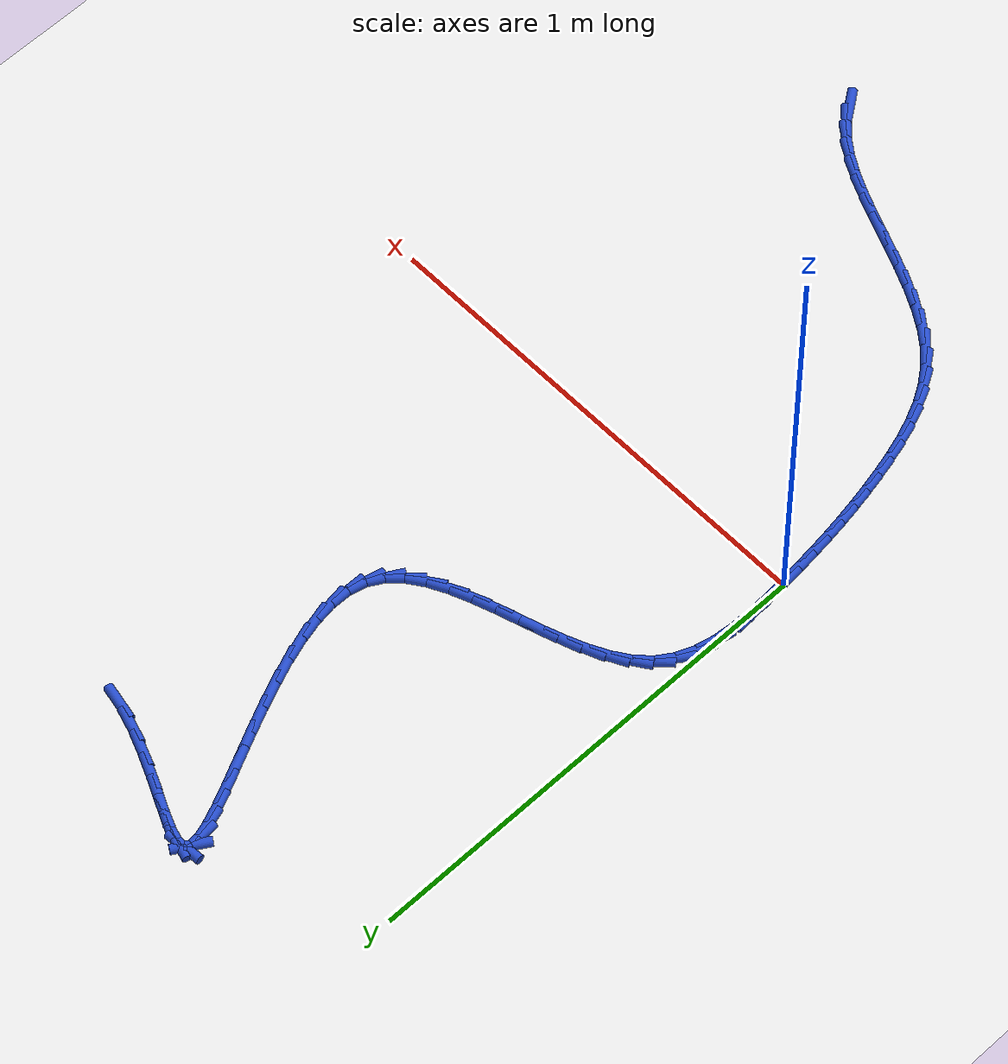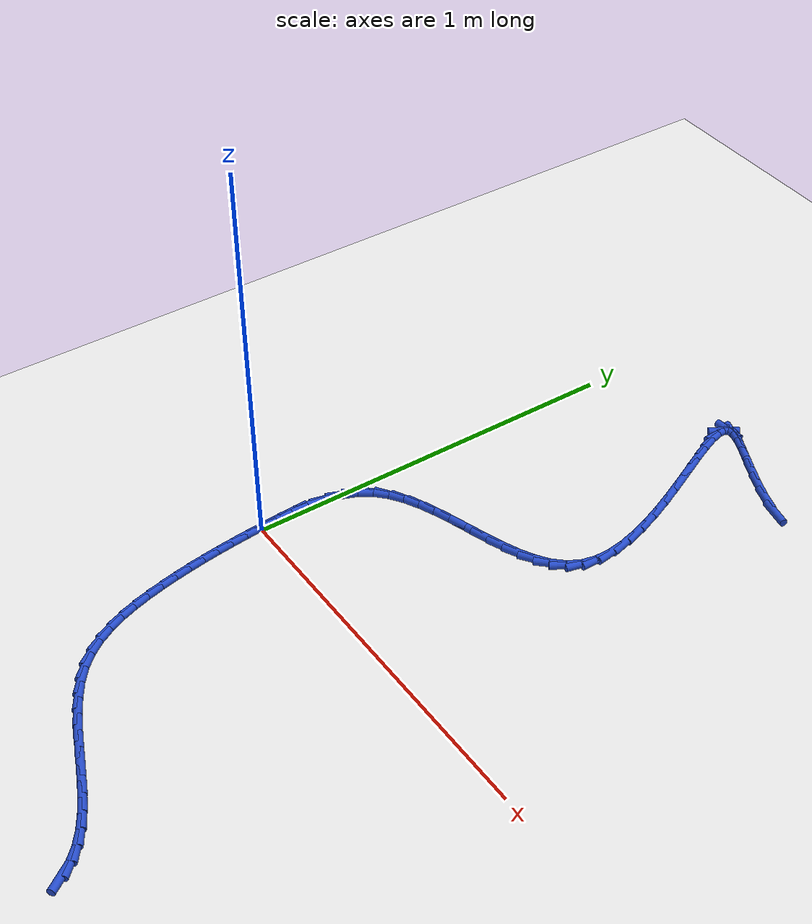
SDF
<sdf version="1.6">
 <world name="default">
  <model name="ground_plane">
   <static>1</static>
   <link name="link">
    <collision name="collision">
     <geometry><plane><normal>0 0 1</normal><size>100 100</size></plane></geometry>
     <surface><friction><ode><mu>100</mu><mu2>50</mu2></ode></friction></surface>
    </collision>
    <visual name="visual">
     <cast_shadows>0</cast_shadows>
     <geometry><plane><normal>0 0 1</normal><size>100 100</size></plane></geometry>
     <material>
      <script><uri>file://media/materials/scripts/gazebo.material</uri><name>Gazebo/WhiteGlow</name></script>
     </material>
    </visual>
   </link>
  </model>
  <model name="line">
   <link name="link_0">
    <pose>2.6454533008646308e-17 -2.7755575615628914e-17 0.01 0 1.57 -1.5002465072789468</pose>
    <collision name="collision">
     <geometry><cylinder><radius>0.01</radius><length>0.08</length></cylinder></geometry>
    </collision>
    <visual name="visual">
     <material>
      <script><name>Gazebo/Blue</name><uri>file://media/materials/scripts/gazebo.material</uri></script>
     </material>
     <geometry><cylinder><radius>0.01</radius><length>0.08</length></cylinder></geometry>
    </visual>
   </link>
   <link name="link_1">
    <pose>-0.0031910155406945067 0.04515560231839195 0.01 0 1.57 -1.534526395487367</pose>
    <collision name="collision">
     <geometry><cylinder><radius>0.01</radius><length>0.08</length></cylinder></geometry>
    </collision>
    <visual name="visual">
     <material>
      <script><name>Gazebo/Blue</name><uri>file://media/materials/scripts/gazebo.material</uri></script>
     </material>
     <geometry><cylinder><radius>0.01</radius><length>0.08</length></cylinder></geometry>
    </visual>
   </link>
   <link name="link_2">
    <pose>-0.0048461995546252605 0.09077074654580536 0.01 0 1.57 1.5497232177446134</pose>
    <collision name="collision">
     <geometry><cylinder><radius>0.01</radius><length>0.08</length></cylinder></geometry>
    </collision>
    <visual name="visual">
     <material>
      <script><name>Gazebo/Blue</name><uri>file://media/materials/scripts/gazebo.material</uri></script>
     </material>
     <geometry><cylinder><radius>0.01</radius><length>0.08</length></cylinder></geometry>
    </visual>
   </link>
   <link name="link_3">
    <pose>-0.0038965086762597296 0.13583055683068881 0.01 0 1.57 1.4648789085244343</pose>
    <collision name="collision">
     <geometry><cylinder><radius>0.01</radius><length>0.08</length></cylinder></geometry>
    </collision>
    <visual name="visual">
     <material>
      <script><name>Gazebo/Blue</name><uri>file://media/materials/scripts/gazebo.material</uri></script>
     </material>
     <geometry><cylinder><radius>0.01</radius><length>0.08</length></cylinder></geometry>
    </visual>
   </link>
   <link name="link_4">
    <pose>0.0007271004599345848 0.17932015732149093 0.01 0 1.57 1.3456909850739898</pose>
    <collision name="collision">
     <geometry><cylinder><radius>0.01</radius><length>0.08</length></cylinder></geometry>
    </collision>
    <visual name="visual">
     <material>
      <script><name>Gazebo/Blue</name><uri>file://media/materials/scripts/gazebo.material</uri></script>
     </material>
     <geometry><cylinder><radius>0.01</radius><length>0.08</length></cylinder></geometry>
    </visual>
   </link>
   <link name="link_5">
    <pose>0.010093671219490197 0.2202246721666603 0.01 0 1.57 1.1843707430381305</pose>
    <collision name="collision">
     <geometry><cylinder><radius>0.01</radius><length>0.08</length></cylinder></geometry>
    </collision>
    <visual name="visual">
     <material>
      <script><name>Gazebo/Blue</name><uri>file://media/materials/scripts/gazebo.material</uri></script>
     </material>
     <geometry><cylinder><radius>0.01</radius><length>0.08</length></cylinder></geometry>
    </visual>
   </link>
   <link name="link_6">
    <pose>0.02527224696793958 0.2575292255146455 0.01 0 1.57 0.9774338475238803</pose>
    <collision name="collision">
     <geometry><cylinder><radius>0.01</radius><length>0.08</length></cylinder></geometry>
    </collision>
    <visual name="visual">
     <material>
      <script><name>Gazebo/Blue</name><uri>file://media/materials/scripts/gazebo.material</uri></script>
     </material>
     <geometry><cylinder><radius>0.01</radius><length>0.08</length></cylinder></geometry>
    </visual>
   </link>
   <link name="link_7">
    <pose>0.04732373669634079 0.2902253921291082 0.01 0 1.57 0.7587529641719621</pose>
    <collision name="collision">
     <geometry><cylinder><radius>0.01</radius><length>0.08</length></cylinder></geometry>
    </collision>
    <visual name="visual">
     <material>
      <script><name>Gazebo/Blue</name><uri>file://media/materials/scripts/gazebo.material</uri></script>
     </material>
     <geometry><cylinder><radius>0.01</radius><length>0.08</length></cylinder></geometry>
    </visual>
   </link>
   <link name="link_8">
    <pose>0.07653416477913576 0.31791923563353836 0.01 0 1.57 0.5862257848789586</pose>
    <collision name="collision">
     <geometry><cylinder><radius>0.01</radius><length>0.08</length></cylinder></geometry>
    </collision>
    <visual name="visual">
     <material>
      <script><name>Gazebo/Blue</name><uri>file://media/materials/scripts/gazebo.material</uri></script>
     </material>
     <geometry><cylinder><radius>0.01</radius><length>0.08</length></cylinder></geometry>
    </visual>
   </link>
   <link name="link_9">
    <pose>0.11178583341825085 0.34132998104192025 0.01 0 1.57 0.46266032682506864</pose>
    <collision name="collision">
     <geometry><cylinder><radius>0.01</radius><length>0.08</length></cylinder></geometry>
    </collision>
    <visual name="visual">
     <material>
      <script><name>Gazebo/Blue</name><uri>file://media/materials/scripts/gazebo.material</uri></script>
     </material>
     <geometry><cylinder><radius>0.01</radius><length>0.08</length></cylinder></geometry>
    </visual>
   </link>
   <link name="link_10">
    <pose>0.1518130486746015 0.36129421533155354 0.01 0 1.57 0.3793075172697864</pose>
    <collision name="collision">
     <geometry><cylinder><radius>0.01</radius><length>0.08</length></cylinder></geometry>
    </collision>
    <visual name="visual">
     <material>
      <script><name>Gazebo/Blue</name><uri>file://media/materials/scripts/gazebo.material</uri></script>
     </material>
     <geometry><cylinder><radius>0.01</radius><length>0.08</length></cylinder></geometry>
    </visual>
   </link>
   <link name="link_11">
    <pose>0.19535011660910287 0.3786485254797379 0.01 0 1.57 0.32803913888897657</pose>
    <collision name="collision">
     <geometry><cylinder><radius>0.01</radius><length>0.08</length></cylinder></geometry>
    </collision>
    <visual name="visual">
     <material>
      <script><name>Gazebo/Blue</name><uri>file://media/materials/scripts/gazebo.material</uri></script>
     </material>
     <geometry><cylinder><radius>0.01</radius><length>0.08</length></cylinder></geometry>
    </visual>
   </link>
   <link name="link_12">
    <pose>0.24113134328267055 0.3942294984637727 0.01 0 1.57 0.3035046907364256</pose>
    <collision name="collision">
     <geometry><cylinder><radius>0.01</radius><length>0.08</length></cylinder></geometry>
    </collision>
    <visual name="visual">
     <material>
      <script><name>Gazebo/Blue</name><uri>file://media/materials/scripts/gazebo.material</uri></script>
     </material>
     <geometry><cylinder><radius>0.01</radius><length>0.08</length></cylinder></geometry>
    </visual>
   </link>
   <link name="link_13">
    <pose>0.2878910347562199 0.40887372126095783 0.01 0 1.57 0.30330462855249307</pose>
    <collision name="collision">
     <geometry><cylinder><radius>0.01</radius><length>0.08</length></cylinder></geometry>
    </collision>
    <visual name="visual">
     <material>
      <script><name>Gazebo/Blue</name><uri>file://media/materials/scripts/gazebo.material</uri></script>
     </material>
     <geometry><cylinder><radius>0.01</radius><length>0.08</length></cylinder></geometry>
    </visual>
   </link>
   <link name="link_14">
    <pose>0.3343634970906661 0.42341778084859266 0.01 0 1.57 0.3278949474325294</pose>
    <collision name="collision">
     <geometry><cylinder><radius>0.01</radius><length>0.08</length></cylinder></geometry>
    </collision>
    <visual name="visual">
     <material>
      <script><name>Gazebo/Blue</name><uri>file://media/materials/scripts/gazebo.material</uri></script>
     </material>
     <geometry><cylinder><radius>0.01</radius><length>0.08</length></cylinder></geometry>
    </visual>
   </link>
   <link name="link_15">
    <pose>0.37928303634692473 0.4386982642039769 0.01 0 1.57 0.38077510317933083</pose>
    <collision name="collision">
     <geometry><cylinder><radius>0.01</radius><length>0.08</length></cylinder></geometry>
    </collision>
    <visual name="visual">
     <material>
      <script><name>Gazebo/Blue</name><uri>file://media/materials/scripts/gazebo.material</uri></script>
     </material>
     <geometry><cylinder><radius>0.01</radius><length>0.08</length></cylinder></geometry>
    </visual>
   </link>
   <link name="link_16">
    <pose>0.42138395858591116 0.45555175830441 0.01 0 1.57 0.46899479907376335</pose>
    <collision name="collision">
     <geometry><cylinder><radius>0.01</radius><length>0.08</length></cylinder></geometry>
    </collision>
    <visual name="visual">
     <material>
      <script><name>Gazebo/Blue</name><uri>file://media/materials/scripts/gazebo.material</uri></script>
     </material>
     <geometry><cylinder><radius>0.01</radius><length>0.08</length></cylinder></geometry>
    </visual>
   </link>
   <link name="link_17">
    <pose>0.45940056986854055 0.4748148501271916 0.01 0 1.57 0.6033463983947079</pose>
    <collision name="collision">
     <geometry><cylinder><radius>0.01</radius><length>0.08</length></cylinder></geometry>
    </collision>
    <visual name="visual">
     <material>
      <script><name>Gazebo/Blue</name><uri>file://media/materials/scripts/gazebo.material</uri></script>
     </material>
     <geometry><cylinder><radius>0.01</radius><length>0.08</length></cylinder></geometry>
    </visual>
   </link>
   <link name="link_18">
    <pose>0.4920671762557285 0.49732412664962145 0.01 0 1.57 0.7956772516427784</pose>
    <collision name="collision">
     <geometry><cylinder><radius>0.01</radius><length>0.08</length></cylinder></geometry>
    </collision>
    <visual name="visual">
     <material>
      <script><name>Gazebo/Blue</name><uri>file://media/materials/scripts/gazebo.material</uri></script>
     </material>
     <geometry><cylinder><radius>0.01</radius><length>0.08</length></cylinder></geometry>
    </visual>
   </link>
   <link name="link_19">
    <pose>0.5181180838083903 0.5239161748489991 0.01 0 1.57 1.0477595407057718</pose>
    <collision name="collision">
     <geometry><cylinder><radius>0.01</radius><length>0.08</length></cylinder></geometry>
    </collision>
    <visual name="visual">
     <material>
      <script><name>Gazebo/Blue</name><uri>file://media/materials/scripts/gazebo.material</uri></script>
     </material>
     <geometry><cylinder><radius>0.01</radius><length>0.08</length></cylinder></geometry>
    </visual>
   </link>
   <link name="link_20">
    <pose>0.5362875985874412 0.5554275817026241 0.01 0 1.57 1.3289871894173249</pose>
    <collision name="collision">
     <geometry><cylinder><radius>0.01</radius><length>0.08</length></cylinder></geometry>
    </collision>
    <visual name="visual">
     <material>
      <script><name>Gazebo/Blue</name><uri>file://media/materials/scripts/gazebo.material</uri></script>
     </material>
     <geometry><cylinder><radius>0.01</radius><length>0.08</length></cylinder></geometry>
    </visual>
   </link>
   <link name="link_21">
    <pose>0.5454525833274843 0.592587690681832 0.01 0 1.57 1.557955426080886</pose>
    <collision name="collision">
     <geometry><cylinder><radius>0.01</radius><length>0.08</length></cylinder></geometry>
    </collision>
    <visual name="visual">
     <material>
      <script><name>Gazebo/Blue</name><uri>file://media/materials/scripts/gazebo.material</uri></script>
     </material>
     <geometry><cylinder><radius>0.01</radius><length>0.08</length></cylinder></geometry>
    </visual>
   </link>
   <link name="link_22">
    <pose>0.5459971225542201 0.6349919821776754 0.01 0 1.57 -1.426071719680518</pose>
    <collision name="collision">
     <geometry><cylinder><radius>0.01</radius><length>0.08</length></cylinder></geometry>
    </collision>
    <visual name="visual">
     <material>
      <script><name>Gazebo/Blue</name><uri>file://media/materials/scripts/gazebo.material</uri></script>
     </material>
     <geometry><cylinder><radius>0.01</radius><length>0.08</length></cylinder></geometry>
    </visual>
   </link>
   <link name="link_23">
    <pose>0.5392109118573635 0.6815546573184943 0.01 0 1.57 -1.3180870062495131</pose>
    <collision name="collision">
     <geometry><cylinder><radius>0.01</radius><length>0.08</length></cylinder></geometry>
    </collision>
    <visual name="visual">
     <material>
      <script><name>Gazebo/Blue</name><uri>file://media/materials/scripts/gazebo.material</uri></script>
     </material>
     <geometry><cylinder><radius>0.01</radius><length>0.08</length></cylinder></geometry>
    </visual>
   </link>
   <link name="link_24">
    <pose>0.5263960046674354 0.7311806205919325 0.01 0 1.57 -1.2430658597152402</pose>
    <collision name="collision">
     <geometry><cylinder><radius>0.01</radius><length>0.08</length></cylinder></geometry>
    </collision>
    <visual name="visual">
     <material>
      <script><name>Gazebo/Blue</name><uri>file://media/materials/scripts/gazebo.material</uri></script>
     </material>
     <geometry><cylinder><radius>0.01</radius><length>0.08</length></cylinder></geometry>
    </visual>
   </link>
   <link name="link_25">
    <pose>0.5088544544149562 0.7827747764856342 0.01 0 1.57 -1.190631117307065</pose>
    <collision name="collision">
     <geometry><cylinder><radius>0.01</radius><length>0.08</length></cylinder></geometry>
    </collision>
    <visual name="visual">
     <material>
      <script><name>Gazebo/Blue</name><uri>file://media/materials/scripts/gazebo.material</uri></script>
     </material>
     <geometry><cylinder><radius>0.01</radius><length>0.08</length></cylinder></geometry>
    </visual>
   </link>
   <link name="link_26">
    <pose>0.4878883145304467 0.8352420294872428 0.01 0 1.57 -1.1546747554538452</pose>
    <collision name="collision">
     <geometry><cylinder><radius>0.01</radius><length>0.08</length></cylinder></geometry>
    </collision>
    <visual name="visual">
     <material>
      <script><name>Gazebo/Blue</name><uri>file://media/materials/scripts/gazebo.material</uri></script>
     </material>
     <geometry><cylinder><radius>0.01</radius><length>0.08</length></cylinder></geometry>
    </visual>
   </link>
   <link name="link_27">
    <pose>0.46479963844442757 0.8874872840844025 0.01 0 1.57 -1.1318709974345722</pose>
    <collision name="collision">
     <geometry><cylinder><radius>0.01</radius><length>0.08</length></cylinder></geometry>
    </collision>
    <visual name="visual">
     <material>
      <script><name>Gazebo/Blue</name><uri>file://media/materials/scripts/gazebo.material</uri></script>
     </material>
     <geometry><cylinder><radius>0.01</radius><length>0.08</length></cylinder></geometry>
    </visual>
   </link>
   <link name="link_28">
    <pose>0.44089047958741934 0.9384154447647566 0.01 0 1.57 -1.120935004586218</pose>
    <collision name="collision">
     <geometry><cylinder><radius>0.01</radius><length>0.08</length></cylinder></geometry>
    </collision>
    <visual name="visual">
     <material>
      <script><name>Gazebo/Blue</name><uri>file://media/materials/scripts/gazebo.material</uri></script>
     </material>
     <geometry><cylinder><radius>0.01</radius><length>0.08</length></cylinder></geometry>
    </visual>
   </link>
   <link name="link_29">
    <pose>0.41746289138994264 0.9869314160159498 0.01 0 1.57 -1.1225580075919648</pose>
    <collision name="collision">
     <geometry><cylinder><radius>0.01</radius><length>0.08</length></cylinder></geometry>
    </collision>
    <visual name="visual">
     <material>
      <script><name>Gazebo/Blue</name><uri>file://media/materials/scripts/gazebo.material</uri></script>
     </material>
     <geometry><cylinder><radius>0.01</radius><length>0.08</length></cylinder></geometry>
    </visual>
   </link>
   <link name="link_30">
    <pose>0.39581892728251833 1.0319401023256258 0.01 0 1.57 -1.1402422260604606</pose>
    <collision name="collision">
     <geometry><cylinder><radius>0.01</radius><length>0.08</length></cylinder></geometry>
    </collision>
    <visual name="visual">
     <material>
      <script><name>Gazebo/Blue</name><uri>file://media/materials/scripts/gazebo.material</uri></script>
     </material>
     <geometry><cylinder><radius>0.01</radius><length>0.08</length></cylinder></geometry>
    </visual>
   </link>
   <link name="link_31">
    <pose>0.377260640695667 1.0723464081814282 0.01 0 1.57 -1.1831814850915932</pose>
    <collision name="collision">
     <geometry><cylinder><radius>0.01</radius><length>0.08</length></cylinder></geometry>
    </collision>
    <visual name="visual">
     <material>
      <script><name>Gazebo/Blue</name><uri>file://media/materials/scripts/gazebo.material</uri></script>
     </material>
     <geometry><cylinder><radius>0.01</radius><length>0.08</length></cylinder></geometry>
    </visual>
   </link>
   <link name="link_32">
    <pose>0.36309008505990914 1.107055238071001 0.01 0 1.57 -1.2758631172956232</pose>
    <collision name="collision">
     <geometry><cylinder><radius>0.01</radius><length>0.08</length></cylinder></geometry>
    </collision>
    <visual name="visual">
     <material>
      <script><name>Gazebo/Blue</name><uri>file://media/materials/scripts/gazebo.material</uri></script>
     </material>
     <geometry><cylinder><radius>0.01</radius><length>0.08</length></cylinder></geometry>
    </visual>
   </link>
   <link name="link_33">
    <pose>0.35460931380576555 1.1349714964819877 0.01 0 1.57 -1.4965924245219366</pose>
    <collision name="collision">
     <geometry><cylinder><radius>0.01</radius><length>0.08</length></cylinder></geometry>
    </collision>
    <visual name="visual">
     <material>
      <script><name>Gazebo/Blue</name><uri>file://media/materials/scripts/gazebo.material</uri></script>
     </material>
     <geometry><cylinder><radius>0.01</radius><length>0.08</length></cylinder></geometry>
    </visual>
   </link>
   <link name="link_34">
    <pose>0.3531203803637569 1.1550000879020332 0.01 0 1.57 1.0186473919348549</pose>
    <collision name="collision">
     <geometry><cylinder><radius>0.01</radius><length>0.08</length></cylinder></geometry>
    </collision>
    <visual name="visual">
     <material>
      <script><name>Gazebo/Blue</name><uri>file://media/materials/scripts/gazebo.material</uri></script>
     </material>
     <geometry><cylinder><radius>0.01</radius><length>0.08</length></cylinder></geometry>
    </visual>
   </link>
   <link name="link_35">
    <pose>0.3599253381644037 1.16604591681878 0.01 0 1.57 0.0826007295407529</pose>
    <collision name="collision">
     <geometry><cylinder><radius>0.01</radius><length>0.08</length></cylinder></geometry>
    </collision>
    <visual name="visual">
     <material>
      <script><name>Gazebo/Blue</name><uri>file://media/materials/scripts/gazebo.material</uri></script>
     </material>
     <geometry><cylinder><radius>0.01</radius><length>0.08</length></cylinder></geometry>
    </visual>
   </link>
   <link name="link_36">
    <pose>0.3760257774485329 1.1673788577282314 0.01 0 1.57 -0.27894535806048254</pose>
    <collision name="collision">
     <geometry><cylinder><radius>0.01</radius><length>0.08</length></cylinder></geometry>
    </collision>
    <visual name="visual">
     <material>
      <script><name>Gazebo/Blue</name><uri>file://media/materials/scripts/gazebo.material</uri></script>
     </material>
     <geometry><cylinder><radius>0.01</radius><length>0.08</length></cylinder></geometry>
    </visual>
   </link>
   <link name="link_37">
    <pose>0.4007540835262429 1.1602963537551454 0.01 0 1.57 -0.3979805170856451</pose>
    <collision name="collision">
     <geometry><cylinder><radius>0.01</radius><length>0.08</length></cylinder></geometry>
    </collision>
    <visual name="visual">
     <material>
      <script><name>Gazebo/Blue</name><uri>file://media/materials/scripts/gazebo.material</uri></script>
     </material>
     <geometry><cylinder><radius>0.01</radius><length>0.08</length></cylinder></geometry>
    </visual>
   </link>
   <link name="link_38">
    <pose>0.4328663272996263 1.1467958920946417 0.01 0 1.57 -0.4381175252749171</pose>
    <collision name="collision">
     <geometry><cylinder><radius>0.01</radius><length>0.08</length></cylinder></geometry>
    </collision>
    <visual name="visual">
     <material>
      <script><name>Gazebo/Blue</name><uri>file://media/materials/scripts/gazebo.material</uri></script>
     </material>
     <geometry><cylinder><radius>0.01</radius><length>0.08</length></cylinder></geometry>
    </visual>
   </link>
   <link name="link_39">
    <pose>0.47111803375823735 1.1288756230570263 0.01 0 1.57 -0.44055578273512447</pose>
    <collision name="collision">
     <geometry><cylinder><radius>0.01</radius><length>0.08</length></cylinder></geometry>
    </collision>
    <visual name="visual">
     <material>
      <script><name>Gazebo/Blue</name><uri>file://media/materials/scripts/gazebo.material</uri></script>
     </material>
     <geometry><cylinder><radius>0.01</radius><length>0.08</length></cylinder></geometry>
    </visual>
   </link>
   <link name="link_40">
    <pose>0.5142647278916297 1.1085336969526027 0.01 0 1.57 -0.41762950680833794</pose>
    <collision name="collision">
     <geometry><cylinder><radius>0.01</radius><length>0.08</length></cylinder></geometry>
    </collision>
    <visual name="visual">
     <material>
      <script><name>Gazebo/Blue</name><uri>file://media/materials/scripts/gazebo.material</uri></script>
     </material>
     <geometry><cylinder><radius>0.01</radius><length>0.08</length></cylinder></geometry>
    </visual>
   </link>
   <link name="link_41">
    <pose>0.561061934689358 1.087768264091677 0.01 0 1.57 -0.37188295749838635</pose>
    <collision name="collision">
     <geometry><cylinder><radius>0.01</radius><length>0.08</length></cylinder></geometry>
    </collision>
    <visual name="visual">
     <material>
      <script><name>Gazebo/Blue</name><uri>file://media/materials/scripts/gazebo.material</uri></script>
     </material>
     <geometry><cylinder><radius>0.01</radius><length>0.08</length></cylinder></geometry>
    </visual>
   </link>
   <link name="link_42">
    <pose>0.6102651791409763 1.0685774747845533 0.01 0 1.57 -0.30069452287116466</pose>
    <collision name="collision">
     <geometry><cylinder><radius>0.01</radius><length>0.08</length></cylinder></geometry>
    </collision>
    <visual name="visual">
     <material>
      <script><name>Gazebo/Blue</name><uri>file://media/materials/scripts/gazebo.material</uri></script>
     </material>
     <geometry><cylinder><radius>0.01</radius><length>0.08</length></cylinder></geometry>
    </visual>
   </link>
   <link name="link_43">
    <pose>0.6606299862360386 1.052959479341537 0.01 0 1.57 -0.1972171807309845</pose>
    <collision name="collision">
     <geometry><cylinder><radius>0.01</radius><length>0.08</length></cylinder></geometry>
    </collision>
    <visual name="visual">
     <material>
      <script><name>Gazebo/Blue</name><uri>file://media/materials/scripts/gazebo.material</uri></script>
     </material>
     <geometry><cylinder><radius>0.01</radius><length>0.08</length></cylinder></geometry>
    </visual>
   </link>
   <link name="link_193">
    <pose>0.6661981592095259 -0.852496732700168 0.01 0 1.57 -0.9547316421950911</pose>
    <collision name="collision">
     <geometry><cylinder><radius>0.01</radius><length>0.08</length></cylinder></geometry>
    </collision>
    <visual name="visual">
     <material>
      <script><name>Gazebo/Blue</name><uri>file://media/materials/scripts/gazebo.material</uri></script>
     </material>
     <geometry><cylinder><radius>0.01</radius><length>0.08</length></cylinder></geometry>
    </visual>
   </link>
   <link name="link_194">
    <pose>0.6442351179636835 -0.8214748135951377 0.01 0 1.57 -0.7820562524367295</pose>
    <collision name="collision">
     <geometry><cylinder><radius>0.01</radius><length>0.08</length></cylinder></geometry>
    </collision>
    <visual name="visual">
     <material>
      <script><name>Gazebo/Blue</name><uri>file://media/materials/scripts/gazebo.material</uri></script>
     </material>
     <geometry><cylinder><radius>0.01</radius><length>0.08</length></cylinder></geometry>
    </visual>
   </link>
   <link name="link_195">
    <pose>0.6165263997989248 -0.7939506793922659 0.01 0 1.57 -0.6464609082604088</pose>
    <collision name="collision">
     <geometry><cylinder><radius>0.01</radius><length>0.08</length></cylinder></geometry>
    </collision>
    <visual name="visual">
     <material>
      <script><name>Gazebo/Blue</name><uri>file://media/materials/scripts/gazebo.material</uri></script>
     </material>
     <geometry><cylinder><radius>0.01</radius><length>0.08</length></cylinder></geometry>
    </visual>
   </link>
   <link name="link_196">
    <pose>0.583923412658496 -0.7693473245442777 0.01 0 1.57 -0.5458607155322466</pose>
    <collision name="collision">
     <geometry><cylinder><radius>0.01</radius><length>0.08</length></cylinder></geometry>
    </collision>
    <visual name="visual">
     <material>
      <script><name>Gazebo/Blue</name><uri>file://media/materials/scripts/gazebo.material</uri></script>
     </material>
     <geometry><cylinder><radius>0.01</radius><length>0.08</length></cylinder></geometry>
    </visual>
   </link>
   <link name="link_197">
    <pose>0.5472775644856404 -0.7470877435038953 0.01 0 1.57 -0.47511115722738373</pose>
    <collision name="collision">
     <geometry><cylinder><radius>0.01</radius><length>0.08</length></cylinder></geometry>
    </collision>
    <visual name="visual">
     <material>
      <script><name>Gazebo/Blue</name><uri>file://media/materials/scripts/gazebo.material</uri></script>
     </material>
     <geometry><cylinder><radius>0.01</radius><length>0.08</length></cylinder></geometry>
    </visual>
   </link>
   <link name="link_198">
    <pose>0.5074402632236026 -0.7265949307238425 0.01 0 1.57 -0.42920894378810387</pose>
    <collision name="collision">
     <geometry><cylinder><radius>0.01</radius><length>0.08</length></cylinder></geometry>
    </collision>
    <visual name="visual">
     <material>
      <script><name>Gazebo/Blue</name><uri>file://media/materials/scripts/gazebo.material</uri></script>
     </material>
     <geometry><cylinder><radius>0.01</radius><length>0.08</length></cylinder></geometry>
    </visual>
   </link>
   <link name="link_199">
    <pose>0.46526291681562604 -0.7072918806568422 0.01 0 1.57 -0.40443315901011384</pose>
    <collision name="collision">
     <geometry><cylinder><radius>0.01</radius><length>0.08</length></cylinder></geometry>
    </collision>
    <visual name="visual">
     <material>
      <script><name>Gazebo/Blue</name><uri>file://media/materials/scripts/gazebo.material</uri></script>
     </material>
     <geometry><cylinder><radius>0.01</radius><length>0.08</length></cylinder></geometry>
    </visual>
   </link>
   <link name="link_200">
    <pose>0.4215969332049571 -0.6886015877556187 0.01 0 1.57 -0.398533123203083</pose>
    <collision name="collision">
     <geometry><cylinder><radius>0.01</radius><length>0.08</length></cylinder></geometry>
    </collision>
    <visual name="visual">
     <material>
      <script><name>Gazebo/Blue</name><uri>file://media/materials/scripts/gazebo.material</uri></script>
     </material>
     <geometry><cylinder><radius>0.01</radius><length>0.08</length></cylinder></geometry>
    </visual>
   </link>
   <link name="link_201">
    <pose>0.37729372033483916 -0.6699470464728953 0.01 0 1.57 -0.4106355868366707</pose>
    <collision name="collision">
     <geometry><cylinder><radius>0.01</radius><length>0.08</length></cylinder></geometry>
    </collision>
    <visual name="visual">
     <material>
      <script><name>Gazebo/Blue</name><uri>file://media/materials/scripts/gazebo.material</uri></script>
     </material>
     <geometry><cylinder><radius>0.01</radius><length>0.08</length></cylinder></geometry>
    </visual>
   </link>
   <link name="link_202">
    <pose>0.3332046861485168 -0.6507512512613949 0.01 0 1.57 -0.4411305729156791</pose>
    <collision name="collision">
     <geometry><cylinder><radius>0.01</radius><length>0.08</length></cylinder></geometry>
    </collision>
    <visual name="visual">
     <material>
      <script><name>Gazebo/Blue</name><uri>file://media/materials/scripts/gazebo.material</uri></script>
     </material>
     <geometry><cylinder><radius>0.01</radius><length>0.08</length></cylinder></geometry>
    </visual>
   </link>
   <link name="link_203">
    <pose>0.290181238589233 -0.6304371965738406 0.01 0 1.57 -0.49158242676123004</pose>
    <collision name="collision">
     <geometry><cylinder><radius>0.01</radius><length>0.08</length></cylinder></geometry>
    </collision>
    <visual name="visual">
     <material>
      <script><name>Gazebo/Blue</name><uri>file://media/materials/scripts/gazebo.material</uri></script>
     </material>
     <geometry><cylinder><radius>0.01</radius><length>0.08</length></cylinder></geometry>
    </visual>
   </link>
   <link name="link_204">
    <pose>0.24907478560023466 -0.6084278768629571 0.01 0 1.57 -0.5645847517430559</pose>
    <collision name="collision">
     <geometry><cylinder><radius>0.01</radius><length>0.08</length></cylinder></geometry>
    </collision>
    <visual name="visual">
     <material>
      <script><name>Gazebo/Blue</name><uri>file://media/materials/scripts/gazebo.material</uri></script>
     </material>
     <geometry><cylinder><radius>0.01</radius><length>0.08</length></cylinder></geometry>
    </visual>
   </link>
   <link name="link_205">
    <pose>0.21073673512476496 -0.5841462865814671 0.01 0 1.57 -0.6633325015056335</pose>
    <collision name="collision">
     <geometry><cylinder><radius>0.01</radius><length>0.08</length></cylinder></geometry>
    </collision>
    <visual name="visual">
     <material>
      <script><name>Gazebo/Blue</name><uri>file://media/materials/scripts/gazebo.material</uri></script>
     </material>
     <geometry><cylinder><radius>0.01</radius><length>0.08</length></cylinder></geometry>
    </visual>
   </link>
   <link name="link_206">
    <pose>0.17601849510606823 -0.5570154201820938 0.01 0 1.57 -0.7898483228249482</pose>
    <collision name="collision">
     <geometry><cylinder><radius>0.01</radius><length>0.08</length></cylinder></geometry>
    </collision>
    <visual name="visual">
     <material>
      <script><name>Gazebo/Blue</name><uri>file://media/materials/scripts/gazebo.material</uri></script>
     </material>
     <geometry><cylinder><radius>0.01</radius><length>0.08</length></cylinder></geometry>
    </visual>
   </link>
   <link name="link_207">
    <pose>0.145750289761965 -0.526476612147813 0.01 0 1.57 -0.9246036115530559</pose>
    <collision name="collision">
     <geometry><cylinder><radius>0.01</radius><length>0.08</length></cylinder></geometry>
    </collision>
    <visual name="visual">
     <material>
      <script><name>Gazebo/Blue</name><uri>file://media/materials/scripts/gazebo.material</uri></script>
     </material>
     <geometry><cylinder><radius>0.01</radius><length>0.08</length></cylinder></geometry>
    </visual>
   </link>
   <link name="link_208">
    <pose>0.12013527396876608 -0.492514088755374 0.01 0 1.57 -1.0423398177449783</pose>
    <collision name="collision">
     <geometry><cylinder><radius>0.01</radius><length>0.08</length></cylinder></geometry>
    </collision>
    <visual name="visual">
     <material>
      <script><name>Gazebo/Blue</name><uri>file://media/materials/scripts/gazebo.material</uri></script>
     </material>
     <geometry><cylinder><radius>0.01</radius><length>0.08</length></cylinder></geometry>
    </visual>
   </link>
   <link name="link_209">
    <pose>0.09866033084914774 -0.45573219598984854 0.01 0 1.57 -1.1404181126614505</pose>
    <collision name="collision">
     <geometry><cylinder><radius>0.01</radius><length>0.08</length></cylinder></geometry>
    </collision>
    <visual name="visual">
     <material>
      <script><name>Gazebo/Blue</name><uri>file://media/materials/scripts/gazebo.material</uri></script>
     </material>
     <geometry><cylinder><radius>0.01</radius><length>0.08</length></cylinder></geometry>
    </visual>
   </link>
   <link name="link_210">
    <pose>0.0807732203282009 -0.41676915115086655 0.01 0 1.57 -1.2193662118982374</pose>
    <collision name="collision">
     <geometry><cylinder><radius>0.01</radius><length>0.08</length></cylinder></geometry>
    </collision>
    <visual name="visual">
     <material>
      <script><name>Gazebo/Blue</name><uri>file://media/materials/scripts/gazebo.material</uri></script>
     </material>
     <geometry><cylinder><radius>0.01</radius><length>0.08</length></cylinder></geometry>
    </visual>
   </link>
   <link name="link_211">
    <pose>0.0659217023310165 -0.37626317153805827 0.01 0 1.57 -1.2805594381578287</pose>
    <collision name="collision">
     <geometry><cylinder><radius>0.01</radius><length>0.08</length></cylinder></geometry>
    </collision>
    <visual name="visual">
     <material>
      <script><name>Gazebo/Blue</name><uri>file://media/materials/scripts/gazebo.material</uri></script>
     </material>
     <geometry><cylinder><radius>0.01</radius><length>0.08</length></cylinder></geometry>
    </visual>
   </link>
   <link name="link_212">
    <pose>0.05355353678268518 -0.3348524744510523 0.01 0 1.57 -1.325416776854767</pose>
    <collision name="collision">
     <geometry><cylinder><radius>0.01</radius><length>0.08</length></cylinder></geometry>
    </collision>
    <visual name="visual">
     <material>
      <script><name>Gazebo/Blue</name><uri>file://media/materials/scripts/gazebo.material</uri></script>
     </material>
     <geometry><cylinder><radius>0.01</radius><length>0.08</length></cylinder></geometry>
    </visual>
   </link>
   <link name="link_213">
    <pose>0.04311648360829848 -0.2931752771894809 0.01 0 1.57 -1.35585980587512</pose>
    <collision name="collision">
     <geometry><cylinder><radius>0.01</radius><length>0.08</length></cylinder></geometry>
    </collision>
    <visual name="visual">
     <material>
      <script><name>Gazebo/Blue</name><uri>file://media/materials/scripts/gazebo.material</uri></script>
     </material>
     <geometry><cylinder><radius>0.01</radius><length>0.08</length></cylinder></geometry>
    </visual>
   </link>
   <link name="link_214">
    <pose>0.034086144819476596 -0.2518102813530629 0.01 0 1.57 -1.3809982051956409</pose>
    <collision name="collision">
     <geometry><cylinder><radius>0.01</radius><length>0.08</length></cylinder></geometry>
    </collision>
    <visual name="visual">
     <material>
      <script><name>Gazebo/Blue</name><uri>file://media/materials/scripts/gazebo.material</uri></script>
     </material>
     <geometry><cylinder><radius>0.01</radius><length>0.08</length></cylinder></geometry>
    </visual>
   </link>
   <link name="link_215">
    <pose>0.026202200625580156 -0.21077169066335805 0.01 0 1.57 -1.405240552264663</pose>
    <collision name="collision">
     <geometry><cylinder><radius>0.01</radius><length>0.08</length></cylinder></geometry>
    </collision>
    <visual name="visual">
     <material>
      <script><name>Gazebo/Blue</name><uri>file://media/materials/scripts/gazebo.material</uri></script>
     </material>
     <geometry><cylinder><radius>0.01</radius><length>0.08</length></cylinder></geometry>
    </visual>
   </link>
   <link name="link_216">
    <pose>0.019350108040681477 -0.16976209395796668 0.01 0 1.57 -1.4280464793487724</pose>
    <collision name="collision">
     <geometry><cylinder><radius>0.01</radius><length>0.08</length></cylinder></geometry>
    </collision>
    <visual name="visual">
     <material>
      <script><name>Gazebo/Blue</name><uri>file://media/materials/scripts/gazebo.material</uri></script>
     </material>
     <geometry><cylinder><radius>0.01</radius><length>0.08</length></cylinder></geometry>
    </visual>
   </link>
   <link name="link_217">
    <pose>0.013416854375227567 -0.12848080888791338 0.01 0 1.57 -1.4488952762038565</pose>
    <collision name="collision">
     <geometry><cylinder><radius>0.01</radius><length>0.08</length></cylinder></geometry>
    </collision>
    <visual name="visual">
     <material>
      <script><name>Gazebo/Blue</name><uri>file://media/materials/scripts/gazebo.material</uri></script>
     </material>
     <geometry><cylinder><radius>0.01</radius><length>0.08</length></cylinder></geometry>
    </visual>
   </link>
   <link name="link_218">
    <pose>0.008289426939664921 -0.08662715310421965 0.01 0 1.57 -1.4673764208318874</pose>
    <collision name="collision">
     <geometry><cylinder><radius>0.01</radius><length>0.08</length></cylinder></geometry>
    </collision>
    <visual name="visual">
     <material>
      <script><name>Gazebo/Blue</name><uri>file://media/materials/scripts/gazebo.material</uri></script>
     </material>
     <geometry><cylinder><radius>0.01</radius><length>0.08</length></cylinder></geometry>
    </visual>
   </link>
   <link name="link_219">
    <pose>0.0038548130444402136 -0.04390044425790803 0.01 0 1.57 -1.4832128981526842</pose>
    <collision name="collision">
     <geometry><cylinder><radius>0.01</radius><length>0.08</length></cylinder></geometry>
    </collision>
    <visual name="visual">
     <material>
      <script><name>Gazebo/Blue</name><uri>file://media/materials/scripts/gazebo.material</uri></script>
     </material>
     <geometry><cylinder><radius>0.01</radius><length>0.08</length></cylinder></geometry>
    </visual>
   </link>
   <link name="link_220">
    <pose>1.951563910473908e-17 5.551115123125783e-17 0.01 0 1.57 -1.4962671849854337</pose>
    <collision name="collision">
     <geometry><cylinder><radius>0.01</radius><length>0.08</length></cylinder></geometry>
    </collision>
    <visual name="visual">
     <material>
      <script><name>Gazebo/Blue</name><uri>file://media/materials/scripts/gazebo.material</uri></script>
     </material>
     <geometry><cylinder><radius>0.01</radius><length>0.08</length></cylinder></geometry>
    </visual>
   </link>
   <link name="link_221">
    <pose>-0.003388024883208722 0.04537486201847879 0.01 0 1.57 -1.5065317750881622</pose>
    <collision name="collision">
     <geometry><cylinder><radius>0.01</radius><length>0.08</length></cylinder></geometry>
    </collision>
    <visual name="visual">
     <material>
      <script><name>Gazebo/Blue</name><uri>file://media/materials/scripts/gazebo.material</uri></script>
     </material>
     <geometry><cylinder><radius>0.01</radius><length>0.08</length></cylinder></geometry>
    </visual>
   </link>
   <link name="link_222">
    <pose>-0.006422274294739681 0.0925248241465101 0.01 0 1.57 -1.5014961143564347</pose>
    <collision name="collision">
     <geometry><cylinder><radius>0.01</radius><length>0.08</length></cylinder></geometry>
    </collision>
    <visual name="visual">
     <material>
      <script><name>Gazebo/Blue</name><uri>file://media/materials/scripts/gazebo.material</uri></script>
     </material>
     <geometry><cylinder><radius>0.01</radius><length>0.08</length></cylinder></geometry>
    </visual>
   </link>
  </model>
 </world>
</sdf>
